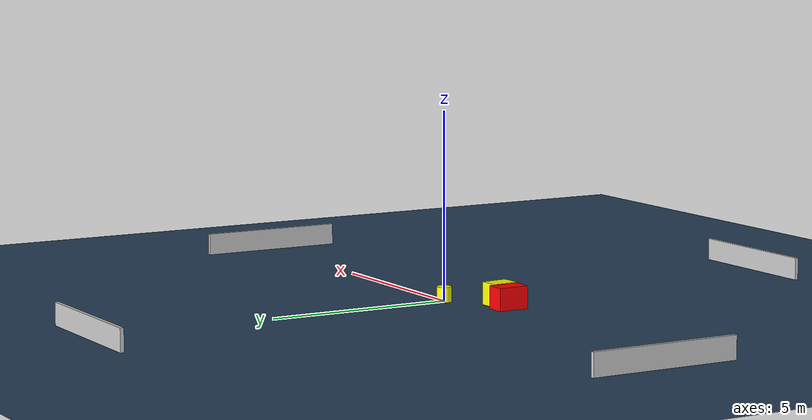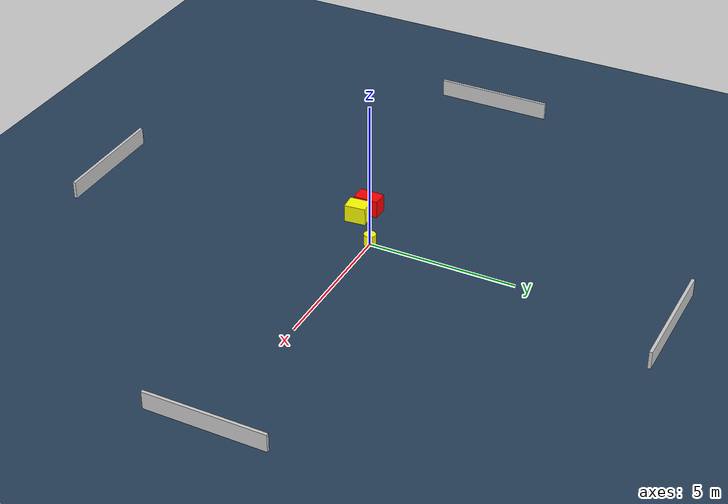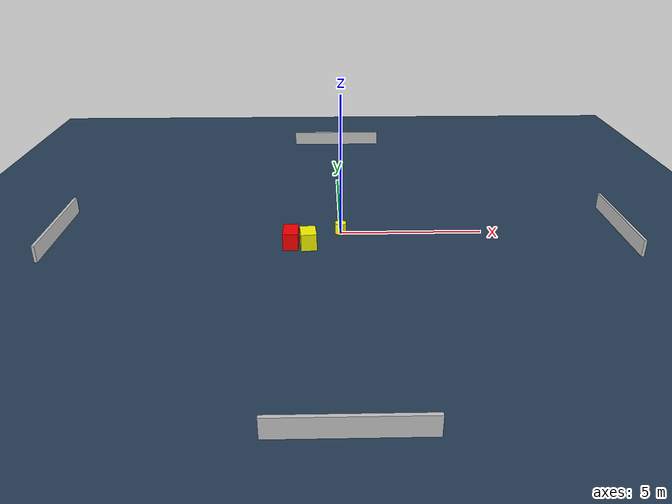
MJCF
<?xml version="1.0" ?>
<mujoco model="generated_environment">
  <option timestep="0.01" integrator="RK4" cone="elliptic"/>
  <default>
    <geom density="1"/>
  </default>
  <asset>
    <texture builtin="gradient" height="3072" name="skybox" rgb1="0.3 0.5 0.7" rgb2="0 0 0" type="skybox" width="512"/>
    <texture builtin="checker" height="300" name="groundplane" rgb1="0.2 0.3 0.4" rgb2="0.1 0.2 0.3" type="2d" width="300"/>
    <material name="groundplane" reflectance="0.2" texrepeat="5 5" texture="groundplane"/>
  </asset>
  <worldbody>
    <light dir="0 0 -1" directional="true" pos="0 0 1.5"/>
    <geom condim="3" friction="0.5 0.005 0.001" material="groundplane" name="floor" pos="0 0 0" size="0 0 0.05" type="plane"/>
    <body name="walls">
      <geom name="wall_1" condim="4" pos="-10.0 0.0 0.3" rgba="0.800000011920929 0.800000011920929 0.800000011920929 1.0" size="0.05 2.0 0.3" type="box"/>
      <geom name="wall_2" condim="4" pos="10.0 0.0 0.3" rgba="0.800000011920929 0.800000011920929 0.800000011920929 1.0" size="0.05 2.0 0.3" type="box"/>
      <geom name="wall_3" condim="4" pos="0.0 -10.0 0.3" rgba="0.800000011920929 0.800000011920929 0.800000011920929 1.0" size="2.0 0.05 0.3" type="box"/>
      <geom name="wall_4" condim="4" pos="0.0 10.0 0.3" rgba="0.800000011920929 0.800000011920929 0.800000011920929 1.0" size="2.0 0.05 0.3" type="box"/>
    </body>
    <body name="robot">
      <joint name="joint_x" type="slide" pos="0 0 0" axis="1 0 0"/>
      <joint name="joint_y" type="slide" pos="0 0 0" axis="0 1 0"/>
      <geom name="robot" type="cylinder" pos="0.0 0.0 0.2" size="0.2 0.2 0.0" mass="5.0" friction="1.0 0.005 0.0001" condim="4" rgba="1.0 1.0 0.0 1.0"/>
    </body>
    <body name="obstacle_1_movable">
      <geom name="obstacle_1_movable" condim="4" pos="-1.127845988838069 -1.0157316555433928 0.3" euler="0 0 5.348651984694817" friction="0.0 0.005 0.001" rgba="1.0 1.0 0.0 1.0" size="0.2663873444859322 0.3565860537892246 0.3" type="box" mass="0.1"/>
      <joint type="free"/>
    </body>
    <body name="obstacle_2_static">
      <geom name="obstacle_2_static" condim="4" pos="-1.724029767015739 -0.9090828367555859 0.3" euler="0 0 269.94040080124387" friction="0.0 0.005 0.001" rgba="1.0 0.0 0.0 1.0" size="0.4179556476906983 0.2604821161815627 0.3" type="box"/>
    </body>
  </worldbody>
  <actuator>
    <motor name="actuator_x" joint="joint_x" gear="1" ctrlrange="-1 1"/>
    <motor name="actuator_y" joint="joint_y" gear="1" ctrlrange="-1 1"/>
  </actuator>
</mujoco>
